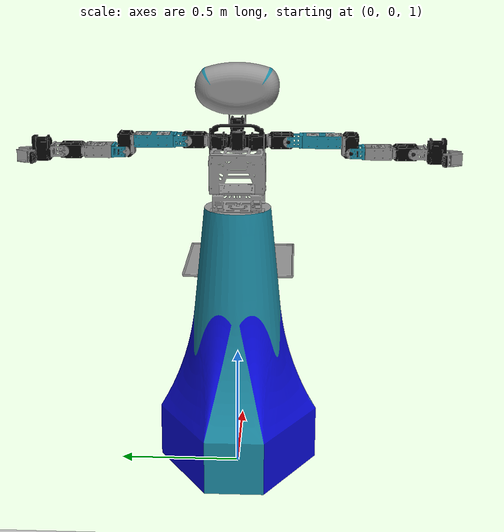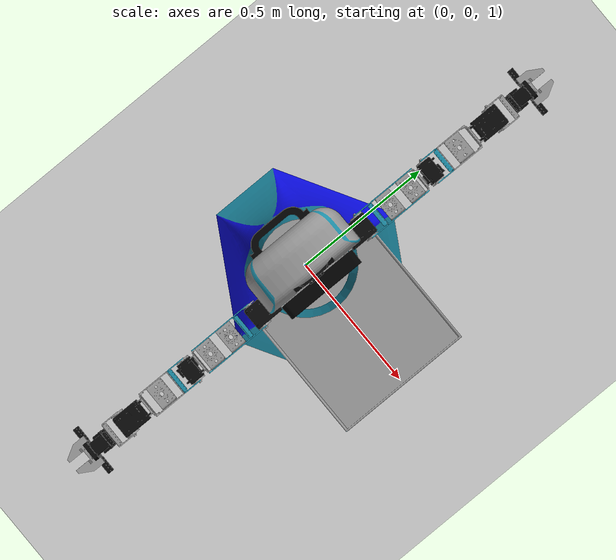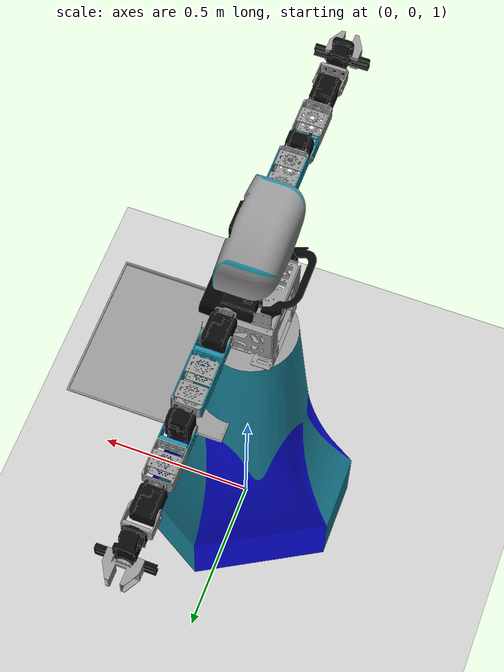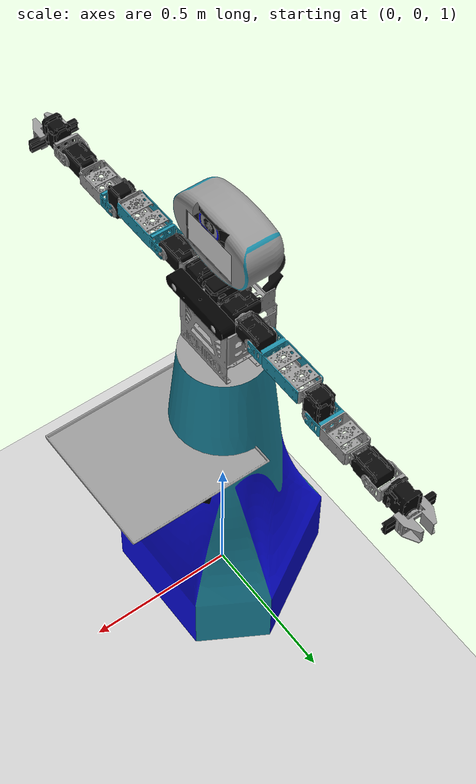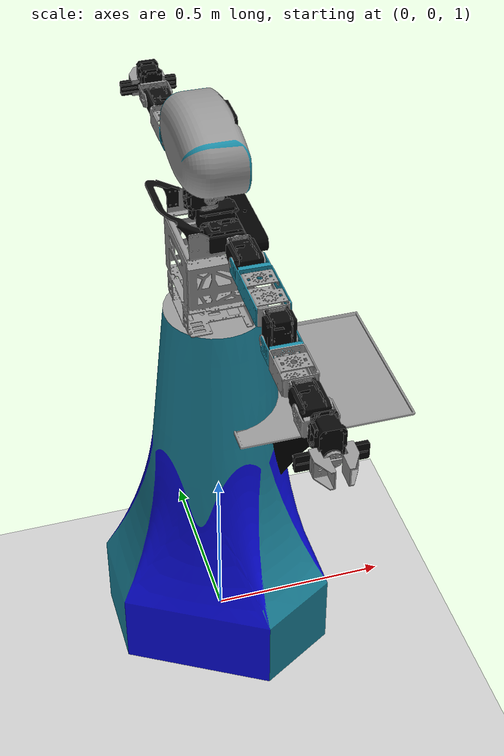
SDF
<?xml version="1.0"?>
<sdf version="1.7">
  <world name="default">

    <light name="sun" type="directional">
      <cast_shadows>1</cast_shadows>
      <pose>0 0 10 0 -0 0</pose>
      <diffuse>0.8 0.8 0.8 1</diffuse>
      <specular>0.2 0.2 0.2 1</specular>
      <attenuation>
        <range>1000</range>
        <constant>0.9</constant>
        <linear>0.01</linear>
        <quadratic>0.001</quadratic>
      </attenuation>
      <direction>0 0.5 -0.9</direction>
    </light>

    <light name="point_light" type="point">
      <pose>0 -0.377195 6.59868 0 -0 0</pose>
      <diffuse>0.784314 0.784314 0.784314 1</diffuse>
      <specular>0.0980392 0.0980392 0.0980392 1</specular>
      <attenuation>
        <range>50</range>
        <constant>0.8</constant>
        <linear>0</linear>
        <quadratic>0.001</quadratic>
      </attenuation>
      <cast_shadows>0</cast_shadows>
      <direction>0 0 -1</direction>
    </light>

    <include>
      <uri>model://ground_plane</uri>
    </include>

    <include>
      <pose>0.0 0 1.0 0 0 0</pose>
      <uri>model://dienen_robot</uri>
    </include>

  </world>
</sdf>

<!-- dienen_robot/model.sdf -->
<sdf version="1.7">
  <model name="dienen_robot">

    <plugin name="navigation_plugin" filename="libdienen_navigation_plugin.so">
      <linear_speed_scale>1.25</linear_speed_scale>
      <angular_speed_scale>9.5</angular_speed_scale>
    </plugin>

    <link name="lower_body_link">
      <pose>0 0 0 0 0 0</pose>
      <inertial>
        <mass>10.0</mass>
      </inertial>
      <collision name="lower_body_collision">
        <geometry>
          <mesh>
            <uri>model://dienen_robot/collisions/lower_body_collision.dae</uri>
          </mesh>
        </geometry>
        <surface>
          <friction>
            <ode>
              <mu>10</mu>
              <mu2>10</mu2>
              <fdir1>0 0 0</fdir1>
              <slip1>0</slip1>
              <slip2>0</slip2>
            </ode>
          </friction>
        </surface>
      </collision>
      <visual name="lower_body_visual">
        <pose>0 0 0 0 0 0</pose>
        <geometry>
          <mesh>
            <uri>model://dienen_robot/meshes/lower_body.dae</uri>
          </mesh>
        </geometry>
      </visual>
    </link>

    <link name="upper_body_link">
      <pose>0 0 1.12161 0 0 0</pose>
      <inertial>
        <mass>10.0</mass>
      </inertial>
      <collision name="upper_body_collision">
        <geometry>
          <mesh>
            <uri>model://dienen_robot/collisions/upper_body_collision.dae</uri>
          </mesh>
        </geometry>
      </collision>
      <visual name="upper_body_visual">
        <geometry>
          <mesh>
            <uri>model://dienen_robot/meshes/upper_body.dae</uri>
          </mesh>
        </geometry>
      </visual>
    </link>

    <link name="depth_camera_link">
      <pose>0.10267 0 1.37778 0 0 0</pose>
      <inertial>
        <mass>10.0</mass>
      </inertial>
      <collision name="depth_camera_collision">
        <geometry>
          <mesh>
            <uri>model://dienen_robot/collisions/depth_camera_collision.dae</uri>
          </mesh>
        </geometry>
      </collision>
      <visual name="depth_camera_visual">
        <geometry>
          <mesh>
            <uri>model://dienen_robot/meshes/depth_camera.dae</uri>
          </mesh>
        </geometry>
      </visual>
      <sensor name="depth_camera" type="depth">
        <pose>0.01 0 0 0 0 0</pose>
        <update_rate>30</update_rate>
        <plugin name="depth_camera_plugin" filename="libgazebo_ros_camera.so">
          <camera_name>depth_camera</camera_name>
          <hack_baseline>0.07</hack_baseline>
          <min_depth>0.001</min_depth>
        </plugin>
        <camera>
          <horizontal_fov>1.047198</horizontal_fov>
          <image>
            <width>640</width>
            <height>480</height>
          </image>
          <clip>
            <near>0.05</near>
            <far>30</far>
          </clip>
        </camera>
      </sensor>
    </link>

    <link name="neck_link">
      <pose>-0.018237 0 1.43554 0 0 0</pose>
      <inertial>
        <mass>10.0</mass>
      </inertial>
      <collision name="neck_collision">
        <geometry>
          <mesh>
            <uri>model://dienen_robot/collisions/neck_collision.dae</uri>
          </mesh>
        </geometry>
      </collision>
      <visual name="neck_visual">
        <geometry>
          <mesh>
            <uri>model://dienen_robot/meshes/neck.dae</uri>
          </mesh>
        </geometry>
      </visual>
    </link>

    <link name="head_link">
      <pose>-0.012258 0 1.46717 0 0 0</pose>
      <inertial>
        <mass>10.0</mass>
      </inertial>
      <collision name="head_collision">
        <geometry>
          <mesh>
            <uri>model://dienen_robot/collisions/head_collision.dae</uri>
          </mesh>
        </geometry>
      </collision>
      <visual name="head_visual">
        <geometry>
          <mesh>
            <uri>model://dienen_robot/meshes/head.dae</uri>
          </mesh>
        </geometry>
      </visual>
    </link>

    <link name="camera_link">
      <pose>0.049994 0 1.66776 0 0 0</pose>
      <inertial>
        <mass>10.0</mass>
      </inertial>
      <collision name="camera_collision">
        <geometry>
          <mesh>
            <uri>model://dienen_robot/collisions/camera_collision.dae</uri>
          </mesh>
        </geometry>
      </collision>
      <visual name="camera_visual">
        <geometry>
          <mesh>
            <uri>model://dienen_robot/meshes/camera.dae</uri>
          </mesh>
        </geometry>
      </visual>
      <sensor name="camera" type="camera">
        <pose>0.01 0 0 0 0 0</pose>
        <update_rate>30</update_rate>
        <plugin name="camera_plugin" filename="libgazebo_ros_camera.so">
          <camera_name>camera</camera_name>
        </plugin>
        <camera>
          <horizontal_fov>1.047198</horizontal_fov>
          <image>
            <width>640</width>
            <height>480</height>
          </image>
          <clip>
            <near>0.1</near>
            <far>100</far>
          </clip>
        </camera>
      </sensor>
    </link>

    <link name="left_shoulder_link">
      <pose>0.026924 0.11869 1.39215 0 0 0</pose>
      <inertial>
        <mass>10.0</mass>
      </inertial>
      <collision name="left_shoulder_collision">
        <geometry>
          <mesh>
            <uri>model://dienen_robot/collisions/neck_collision.dae</uri>
          </mesh>
        </geometry>
      </collision>
      <visual name="left_shoulder_visual">
        <geometry>
          <mesh>
            <uri>model://dienen_robot/meshes/left_shoulder.dae</uri>
          </mesh>
        </geometry>
      </visual>
    </link>

    <link name="left_upper_arm_link">
      <pose>0.026924 0.201815 1.39175 0 0 0</pose>
      <inertial>
        <mass>10.0</mass>
      </inertial>
      <collision name="left_upper_arm_collision">
        <geometry>
          <mesh>
            <uri>model://dienen_robot/collisions/left_upper_arm_collision.dae</uri>
          </mesh>
        </geometry>
      </collision>
      <visual name="left_upper_arm_visual">
        <geometry>
          <mesh>
            <uri>model://dienen_robot/meshes/left_upper_arm.dae</uri>
          </mesh>
        </geometry>
      </visual>
    </link>

    <link name="left_lower_arm_link">
      <pose>0.026924 0.449757 1.34808 0 0 0</pose>
      <inertial>
        <mass>10.0</mass>
      </inertial>
      <collision name="left_lower_arm_collision">
        <geometry>
          <mesh>
            <uri>model://dienen_robot/collisions/left_lower_arm_collision.dae</uri>
          </mesh>
        </geometry>
      </collision>
      <visual name="left_lower_arm_visual">
        <geometry>
          <mesh>
            <uri>model://dienen_robot/meshes/left_lower_arm.dae</uri>
          </mesh>
        </geometry>
      </visual>
    </link>

    <link name="left_gripper_link">
      <pose>0.026924 0.693996 1.348 0 0 0</pose>
      <inertial>
        <mass>100.0</mass>
      </inertial>
      <collision name="left_gripper_collision">
        <geometry>
          <mesh>
            <uri>model://dienen_robot/collisions/left_gripper_collision.dae</uri>
          </mesh>
        </geometry>
      </collision>
      <visual name="left_gripper_visual">
        <geometry>
          <mesh>
            <uri>model://dienen_robot/meshes/left_gripper.dae</uri>
          </mesh>
        </geometry>
      </visual>
    </link>

    <link name="right_shoulder_link">
      <pose>0.026924 -0.11818 1.39215 0 0 0</pose>
      <inertial>
        <mass>10.0</mass>
      </inertial>
      <collision name="right_shoulder_collision">
        <geometry>
          <mesh>
            <uri>model://dienen_robot/collisions/right_shoulder_collision.dae</uri>
          </mesh>
        </geometry>
      </collision>
      <visual name="right_shoulder_visual">
        <geometry>
          <mesh>
            <uri>model://dienen_robot/meshes/right_shoulder.dae</uri>
          </mesh>
        </geometry>
      </visual>
    </link>

    <link name="right_upper_arm_link">
      <pose>0.026924 -0.201304 1.39175 0 0 0</pose>
      <inertial>
        <mass>10.0</mass>
      </inertial>
      <collision name="right_upper_arm_collision">
        <geometry>
          <mesh>
            <uri>model://dienen_robot/collisions/right_upper_arm_collision.dae</uri>
          </mesh>
        </geometry>
      </collision>
      <visual name="right_upper_arm_visual">
        <geometry>
          <mesh>
            <uri>model://dienen_robot/meshes/right_upper_arm.dae</uri>
          </mesh>
        </geometry>
      </visual>
    </link>

    <link name="right_lower_arm_link">
      <pose>0.026924 -0.449246 1.34808 0 0 0</pose>
      <inertial>
        <mass>10.0</mass>
      </inertial>
      <collision name="right_lower_arm_collision">
        <geometry>
          <mesh>
            <uri>model://dienen_robot/collisions/right_lower_arm_collision.dae</uri>
          </mesh>
        </geometry>
      </collision>
      <visual name="right_lower_arm_visual">
        <geometry>
          <mesh>
            <uri>model://dienen_robot/meshes/right_lower_arm.dae</uri>
          </mesh>
        </geometry>
      </visual>
    </link>

    <link name="right_gripper_link">
      <pose>0.026924 -0.693486 1.348 0 0 0</pose>
      <inertial>
        <mass>100.0</mass>
      </inertial>
      <collision name="right_gripper_collision">
        <geometry>
          <mesh>
            <uri>model://dienen_robot/collisions/right_gripper_collision.dae</uri>
          </mesh>
        </geometry>
      </collision>
      <visual name="right_gripper_visual">
        <geometry>
          <mesh>
            <uri>model://dienen_robot/meshes/right_gripper.dae</uri>
          </mesh>
        </geometry>
      </visual>
    </link>

    <joint name="upper_body_joint" type="fixed">
      <parent>lower_body_link</parent>
      <child>upper_body_link</child>
    </joint>

    <joint name="depth_camera_joint" type="fixed">
      <parent>upper_body_link</parent>
      <child>depth_camera_link</child>
    </joint>

    <joint name="neck_joint" type="fixed">
      <parent>upper_body_link</parent>
      <child>neck_link</child>
      <axis>
        <xyz>0 0 1</xyz>
      </axis>
    </joint>

    <joint name="head_joint" type="fixed">
      <parent>neck_link</parent>
      <child>head_link</child>
      <axis>
        <xyz>0 -1 0</xyz>
      </axis>
    </joint>

    <joint name="camera_joint" type="fixed">
      <parent>head_link</parent>
      <child>camera_link</child>
    </joint>

    <joint name="left_shoulder_joint" type="fixed">
      <parent>upper_body_link</parent>
      <child>left_shoulder_link</child>
      <axis>
        <xyz>0 -1 0</xyz>
      </axis>
    </joint>

    <joint name="left_upper_arm_joint" type="revolute">
      <parent>left_shoulder_link</parent>
      <child>left_upper_arm_link</child>
      <axis>
        <xyz>-1 0 0</xyz>
        <limit>
          <lower>-1.04719755</lower>
          <upper>1.04719755</upper>
        </limit>
      </axis>
    </joint>

    <joint name="left_lower_arm_joint" type="fixed">
      <parent>left_upper_arm_link</parent>
      <child>left_lower_arm_link</child>
      <axis>
        <xyz>-1 0 0</xyz>
      </axis>
    </joint>

    <joint name="left_gripper_joint" type="fixed">
      <parent>left_lower_arm_link</parent>
      <child>left_gripper_link</child>
      <axis>
        <xyz>-1 0 0</xyz>
      </axis>
    </joint>

    <joint name="right_shoulder_joint" type="fixed">
      <parent>upper_body_link</parent>
      <child>right_shoulder_link</child>
      <axis>
        <xyz>0 -1 0</xyz>
      </axis>
    </joint>

    <joint name="right_upper_arm_joint" type="revolute">
      <parent>right_shoulder_link</parent>
      <child>right_upper_arm_link</child>
      <axis>
        <xyz>1 0 0</xyz>
        <limit>
          <lower>-1.04719755</lower>
          <upper>1.04719755</upper>
        </limit>
      </axis>
    </joint>

    <joint name="right_lower_arm_joint" type="fixed">
      <parent>right_upper_arm_link</parent>
      <child>right_lower_arm_link</child>
      <axis>
        <xyz>1 0 0</xyz>
      </axis>
    </joint>

    <joint name="right_gripper_joint" type="fixed">
      <parent>right_lower_arm_link</parent>
      <child>right_gripper_link</child>
      <axis>
        <xyz>1 0 0</xyz>
      </axis>
    </joint>

  </model>
</sdf>
